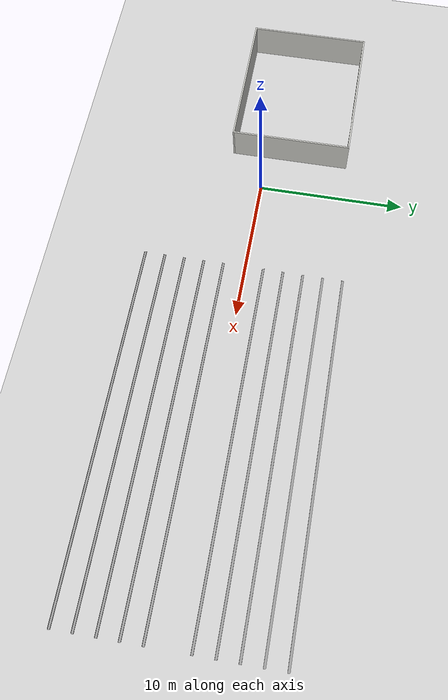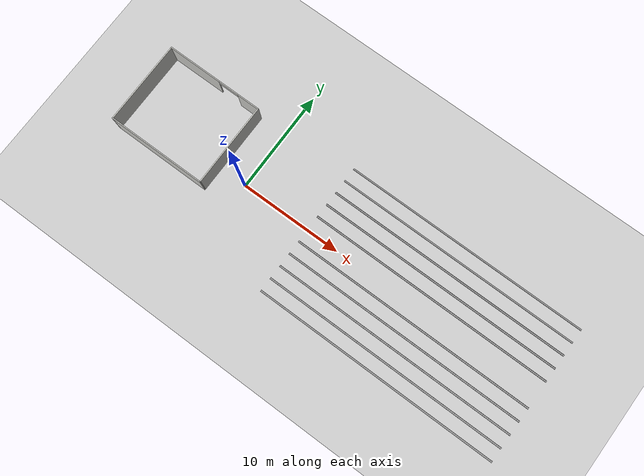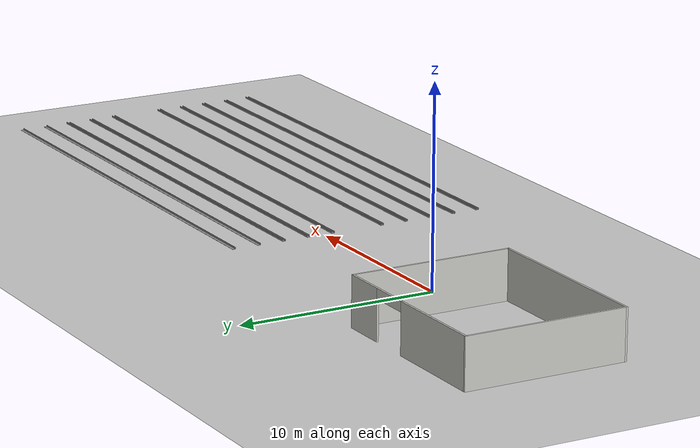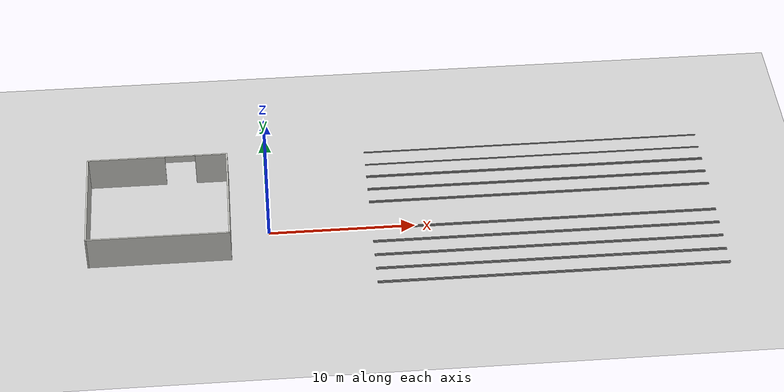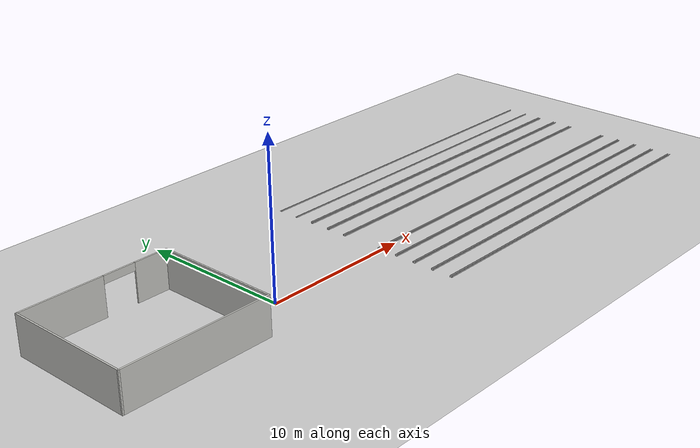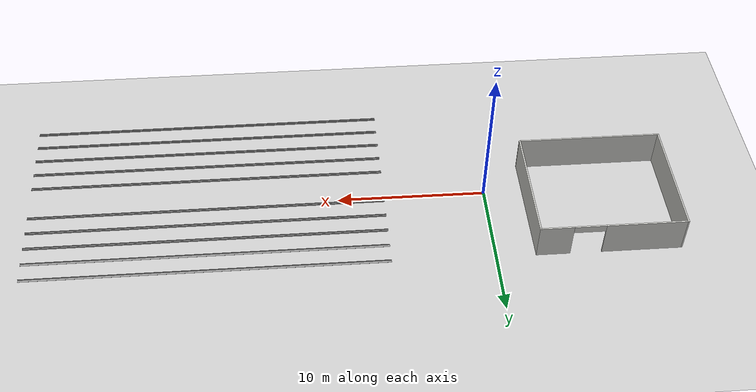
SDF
<sdf version="1.6">
 <world name="default">
  <model name="tray_0">
   <static>1</static>
   <link name="link_0">
    <collision name="collision"><geometry><box><size>23.62 0.15 0.005</size></box></geometry></collision>
    <visual name="visual">
     <geometry><box><size>23.62 0.15 0.005</size></box></geometry>
     <material>
      <script><uri>file://media/materials/scripts/gazebo.material</uri><name>Gazebo/Grey</name></script>
      <emissive>0 0 0 1</emissive>
      <shader type="vertex"><normal_map>__default__</normal_map></shader>
      <specular>0.01 0.01 0.01 1</specular>
      <lighting>1</lighting>
      <ambient>0.7 0.7 0.7 1</ambient>
      <diffuse>0.3 0.3 0.3 1</diffuse>
     </material>
    </visual>
    <pose>18.76 -6.64 1.14965 0 -0 0</pose>
   </link>
  </model>
  <model name="tray_1">
   <static>1</static>
   <link name="link_0">
    <collision name="collision"><geometry><box><size>23.62 0.15 0.005</size></box></geometry></collision>
    <visual name="visual">
     <geometry><box><size>23.62 0.15 0.005</size></box></geometry>
     <material>
      <script><uri>file://media/materials/scripts/gazebo.material</uri><name>Gazebo/Grey</name></script>
      <emissive>0 0 0 1</emissive>
      <shader type="vertex"><normal_map>__default__</normal_map></shader>
      <specular>0.01 0.01 0.01 1</specular>
      <lighting>1</lighting>
      <ambient>0.7 0.7 0.7 1</ambient>
      <diffuse>0.3 0.3 0.3 1</diffuse>
     </material>
    </visual>
    <pose>18.76 -5.32 1.14965 0 -0 0</pose>
   </link>
  </model>
  <model name="tray_2">
   <static>1</static>
   <link name="link_0">
    <collision name="collision"><geometry><box><size>23.62 0.15 0.005</size></box></geometry></collision>
    <visual name="visual">
     <geometry><box><size>23.62 0.15 0.005</size></box></geometry>
     <material>
      <script><uri>file://media/materials/scripts/gazebo.material</uri><name>Gazebo/Grey</name></script>
      <emissive>0 0 0 1</emissive>
      <shader type="vertex"><normal_map>__default__</normal_map></shader>
      <specular>0.01 0.01 0.01 1</specular>
      <lighting>1</lighting>
      <ambient>0.7 0.7 0.7 1</ambient>
      <diffuse>0.3 0.3 0.3 1</diffuse>
     </material>
    </visual>
    <pose>18.76 -4 1.14965 0 -0 0</pose>
   </link>
  </model>
  <model name="tray_3">
   <static>1</static>
   <link name="link_0">
    <collision name="collision"><geometry><box><size>23.62 0.15 0.005</size></box></geometry></collision>
    <visual name="visual">
     <geometry><box><size>23.62 0.15 0.005</size></box></geometry>
     <material>
      <script><uri>file://media/materials/scripts/gazebo.material</uri><name>Gazebo/Grey</name></script>
      <emissive>0 0 0 1</emissive>
      <shader type="vertex"><normal_map>__default__</normal_map></shader>
      <specular>0.01 0.01 0.01 1</specular>
      <lighting>1</lighting>
      <ambient>0.7 0.7 0.7 1</ambient>
      <diffuse>0.3 0.3 0.3 1</diffuse>
     </material>
    </visual>
    <pose>18.76 -2.68 1.14965 0 -0 0</pose>
   </link>
  </model>
  <model name="tray_4">
   <static>1</static>
   <link name="link_0">
    <collision name="collision"><geometry><box><size>23.62 0.15 0.005</size></box></geometry></collision>
    <visual name="visual">
     <geometry><box><size>23.62 0.15 0.005</size></box></geometry>
     <material>
      <script><uri>file://media/materials/scripts/gazebo.material</uri><name>Gazebo/Grey</name></script>
      <emissive>0 0 0 1</emissive>
      <shader type="vertex"><normal_map>__default__</normal_map></shader>
      <specular>0.01 0.01 0.01 1</specular>
      <lighting>1</lighting>
      <ambient>0.7 0.7 0.7 1</ambient>
      <diffuse>0.3 0.3 0.3 1</diffuse>
     </material>
    </visual>
    <pose>18.76 -1.36 1.14965 0 -0 0</pose>
   </link>
  </model>
  <model name="tray_p2_0">
   <static>1</static>
   <link name="link_0">
    <collision name="collision"><geometry><box><size>23.62 0.085 0.005</size></box></geometry></collision>
    <visual name="visual">
     <geometry><box><size>23.62 0.085 0.005</size></box></geometry>
     <material>
      <script><uri>file://media/materials/scripts/gazebo.material</uri><name>Gazebo/Grey</name></script>
      <emissive>0 0 0 1</emissive>
      <shader type="vertex"><normal_map>__default__</normal_map></shader>
      <specular>0.01 0.01 0.01 1</specular>
      <lighting>1</lighting>
      <ambient>0.7 0.7 0.7 1</ambient>
      <diffuse>0.3 0.3 0.3 1</diffuse>
     </material>
    </visual>
    <pose>18.76 -6.715 1.19165 1.5707 -0 0</pose>
   </link>
  </model>
  <model name="tray_p2_1">
   <static>1</static>
   <link name="link_0">
    <collision name="collision"><geometry><box><size>23.62 0.085 0.005</size></box></geometry></collision>
    <visual name="visual">
     <geometry><box><size>23.62 0.085 0.005</size></box></geometry>
     <material>
      <script><uri>file://media/materials/scripts/gazebo.material</uri><name>Gazebo/Grey</name></script>
      <emissive>0 0 0 1</emissive>
      <shader type="vertex"><normal_map>__default__</normal_map></shader>
      <specular>0.01 0.01 0.01 1</specular>
      <lighting>1</lighting>
      <ambient>0.7 0.7 0.7 1</ambient>
      <diffuse>0.3 0.3 0.3 1</diffuse>
     </material>
    </visual>
    <pose>18.76 -5.395 1.19165 1.5707 -0 0</pose>
   </link>
  </model>
  <model name="tray_p2_2">
   <static>1</static>
   <link name="link_0">
    <collision name="collision"><geometry><box><size>23.62 0.085 0.005</size></box></geometry></collision>
    <visual name="visual">
     <geometry><box><size>23.62 0.085 0.005</size></box></geometry>
     <material>
      <script><uri>file://media/materials/scripts/gazebo.material</uri><name>Gazebo/Grey</name></script>
      <emissive>0 0 0 1</emissive>
      <shader type="vertex"><normal_map>__default__</normal_map></shader>
      <specular>0.01 0.01 0.01 1</specular>
      <lighting>1</lighting>
      <ambient>0.7 0.7 0.7 1</ambient>
      <diffuse>0.3 0.3 0.3 1</diffuse>
     </material>
    </visual>
    <pose>18.76 -4.075 1.19165 1.5707 -0 0</pose>
   </link>
  </model>
  <model name="tray_p2_3">
   <static>1</static>
   <link name="link_0">
    <collision name="collision"><geometry><box><size>23.62 0.085 0.005</size></box></geometry></collision>
    <visual name="visual">
     <geometry><box><size>23.62 0.085 0.005</size></box></geometry>
     <material>
      <script><uri>file://media/materials/scripts/gazebo.material</uri><name>Gazebo/Grey</name></script>
      <emissive>0 0 0 1</emissive>
      <shader type="vertex"><normal_map>__default__</normal_map></shader>
      <specular>0.01 0.01 0.01 1</specular>
      <lighting>1</lighting>
      <ambient>0.7 0.7 0.7 1</ambient>
      <diffuse>0.3 0.3 0.3 1</diffuse>
     </material>
    </visual>
    <pose>18.76 -2.755 1.19165 1.5707 -0 0</pose>
   </link>
  </model>
  <model name="tray_p2_4">
   <static>1</static>
   <link name="link_0">
    <collision name="collision"><geometry><box><size>23.62 0.085 0.005</size></box></geometry></collision>
    <visual name="visual">
     <geometry><box><size>23.62 0.085 0.005</size></box></geometry>
     <material>
      <script><uri>file://media/materials/scripts/gazebo.material</uri><name>Gazebo/Grey</name></script>
      <emissive>0 0 0 1</emissive>
      <shader type="vertex"><normal_map>__default__</normal_map></shader>
      <specular>0.01 0.01 0.01 1</specular>
      <lighting>1</lighting>
      <ambient>0.7 0.7 0.7 1</ambient>
      <diffuse>0.3 0.3 0.3 1</diffuse>
     </material>
    </visual>
    <pose>18.76 -1.435 1.19165 1.5707 -0 0</pose>
   </link>
  </model>
  <model name="tray_p2_5">
   <static>1</static>
   <link name="link_0">
    <collision name="collision"><geometry><box><size>23.62 0.085 0.005</size></box></geometry></collision>
    <visual name="visual">
     <geometry><box><size>23.62 0.085 0.005</size></box></geometry>
     <material>
      <script><uri>file://media/materials/scripts/gazebo.material</uri><name>Gazebo/Grey</name></script>
      <emissive>0 0 0 1</emissive>
      <shader type="vertex"><normal_map>__default__</normal_map></shader>
      <specular>0.01 0.01 0.01 1</specular>
      <lighting>1</lighting>
      <ambient>0.7 0.7 0.7 1</ambient>
      <diffuse>0.3 0.3 0.3 1</diffuse>
     </material>
    </visual>
    <pose>18.76 -6.565 1.19165 1.5707 -0 0</pose>
   </link>
  </model>
  <model name="tray_p2_6">
   <static>1</static>
   <link name="link_0">
    <collision name="collision"><geometry><box><size>23.62 0.085 0.005</size></box></geometry></collision>
    <visual name="visual">
     <geometry><box><size>23.62 0.085 0.005</size></box></geometry>
     <material>
      <script><uri>file://media/materials/scripts/gazebo.material</uri><name>Gazebo/Grey</name></script>
      <emissive>0 0 0 1</emissive>
      <shader type="vertex"><normal_map>__default__</normal_map></shader>
      <specular>0.01 0.01 0.01 1</specular>
      <lighting>1</lighting>
      <ambient>0.7 0.7 0.7 1</ambient>
      <diffuse>0.3 0.3 0.3 1</diffuse>
     </material>
    </visual>
    <pose>18.76 -5.245 1.19165 1.5707 -0 0</pose>
   </link>
  </model>
  <model name="tray_p2_7">
   <static>1</static>
   <link name="link_0">
    <collision name="collision"><geometry><box><size>23.62 0.085 0.005</size></box></geometry></collision>
    <visual name="visual">
     <geometry><box><size>23.62 0.085 0.005</size></box></geometry>
     <material>
      <script><uri>file://media/materials/scripts/gazebo.material</uri><name>Gazebo/Grey</name></script>
      <emissive>0 0 0 1</emissive>
      <shader type="vertex"><normal_map>__default__</normal_map></shader>
      <specular>0.01 0.01 0.01 1</specular>
      <lighting>1</lighting>
      <ambient>0.7 0.7 0.7 1</ambient>
      <diffuse>0.3 0.3 0.3 1</diffuse>
     </material>
    </visual>
    <pose>18.76 -3.925 1.19165 1.5707 -0 0</pose>
   </link>
  </model>
  <model name="tray_p2_8">
   <static>1</static>
   <link name="link_0">
    <collision name="collision"><geometry><box><size>23.62 0.085 0.005</size></box></geometry></collision>
    <visual name="visual">
     <geometry><box><size>23.62 0.085 0.005</size></box></geometry>
     <material>
      <script><uri>file://media/materials/scripts/gazebo.material</uri><name>Gazebo/Grey</name></script>
      <emissive>0 0 0 1</emissive>
      <shader type="vertex"><normal_map>__default__</normal_map></shader>
      <specular>0.01 0.01 0.01 1</specular>
      <lighting>1</lighting>
      <ambient>0.7 0.7 0.7 1</ambient>
      <diffuse>0.3 0.3 0.3 1</diffuse>
     </material>
    </visual>
    <pose>18.76 -2.605 1.19165 1.5707 -0 0</pose>
   </link>
  </model>
  <model name="tray_p2_9">
   <static>1</static>
   <link name="link_0">
    <collision name="collision"><geometry><box><size>23.62 0.085 0.005</size></box></geometry></collision>
    <visual name="visual">
     <geometry><box><size>23.62 0.085 0.005</size></box></geometry>
     <material>
      <script><uri>file://media/materials/scripts/gazebo.material</uri><name>Gazebo/Grey</name></script>
      <emissive>0 0 0 1</emissive>
      <shader type="vertex"><normal_map>__default__</normal_map></shader>
      <specular>0.01 0.01 0.01 1</specular>
      <lighting>1</lighting>
      <ambient>0.7 0.7 0.7 1</ambient>
      <diffuse>0.3 0.3 0.3 1</diffuse>
     </material>
    </visual>
    <pose>18.76 -1.285 1.19165 1.5707 -0 0</pose>
   </link>
  </model>
  <model name="tray_5">
   <static>1</static>
   <link name="link_0">
    <collision name="collision"><geometry><box><size>23.62 0.15 0.005</size></box></geometry></collision>
    <visual name="visual">
     <geometry><box><size>23.62 0.15 0.005</size></box></geometry>
     <material>
      <script><uri>file://media/materials/scripts/gazebo.material</uri><name>Gazebo/Grey</name></script>
      <emissive>0 0 0 1</emissive>
      <shader type="vertex"><normal_map>__default__</normal_map></shader>
      <specular>0.01 0.01 0.01 1</specular>
      <lighting>1</lighting>
      <ambient>0.7 0.7 0.7 1</ambient>
      <diffuse>0.3 0.3 0.3 1</diffuse>
     </material>
    </visual>
    <pose>18.76 1.32 1.14965 0 -0 0</pose>
   </link>
  </model>
  <model name="tray_6">
   <static>1</static>
   <link name="link_0">
    <collision name="collision"><geometry><box><size>23.62 0.15 0.005</size></box></geometry></collision>
    <visual name="visual">
     <geometry><box><size>23.62 0.15 0.005</size></box></geometry>
     <material>
      <script><uri>file://media/materials/scripts/gazebo.material</uri><name>Gazebo/Grey</name></script>
      <emissive>0 0 0 1</emissive>
      <shader type="vertex"><normal_map>__default__</normal_map></shader>
      <specular>0.01 0.01 0.01 1</specular>
      <lighting>1</lighting>
      <ambient>0.7 0.7 0.7 1</ambient>
      <diffuse>0.3 0.3 0.3 1</diffuse>
     </material>
    </visual>
    <pose>18.76 2.64 1.14965 0 -0 0</pose>
   </link>
  </model>
  <model name="tray_7">
   <static>1</static>
   <link name="link_0">
    <collision name="collision"><geometry><box><size>23.62 0.15 0.005</size></box></geometry></collision>
    <visual name="visual">
     <geometry><box><size>23.62 0.15 0.005</size></box></geometry>
     <material>
      <script><uri>file://media/materials/scripts/gazebo.material</uri><name>Gazebo/Grey</name></script>
      <emissive>0 0 0 1</emissive>
      <shader type="vertex"><normal_map>__default__</normal_map></shader>
      <specular>0.01 0.01 0.01 1</specular>
      <lighting>1</lighting>
      <ambient>0.7 0.7 0.7 1</ambient>
      <diffuse>0.3 0.3 0.3 1</diffuse>
     </material>
    </visual>
    <pose>18.76 3.96 1.14965 0 -0 0</pose>
   </link>
  </model>
  <model name="tray_8">
   <static>1</static>
   <link name="link_0">
    <collision name="collision"><geometry><box><size>23.62 0.15 0.005</size></box></geometry></collision>
    <visual name="visual">
     <geometry><box><size>23.62 0.15 0.005</size></box></geometry>
     <material>
      <script><uri>file://media/materials/scripts/gazebo.material</uri><name>Gazebo/Grey</name></script>
      <emissive>0 0 0 1</emissive>
      <shader type="vertex"><normal_map>__default__</normal_map></shader>
      <specular>0.01 0.01 0.01 1</specular>
      <lighting>1</lighting>
      <ambient>0.7 0.7 0.7 1</ambient>
      <diffuse>0.3 0.3 0.3 1</diffuse>
     </material>
    </visual>
    <pose>18.76 5.28 1.14965 0 -0 0</pose>
   </link>
  </model>
  <model name="tray_9">
   <static>1</static>
   <link name="link_0">
    <collision name="collision"><geometry><box><size>23.62 0.15 0.005</size></box></geometry></collision>
    <visual name="visual">
     <geometry><box><size>23.62 0.15 0.005</size></box></geometry>
     <material>
      <script><uri>file://media/materials/scripts/gazebo.material</uri><name>Gazebo/Grey</name></script>
      <emissive>0 0 0 1</emissive>
      <shader type="vertex"><normal_map>__default__</normal_map></shader>
      <specular>0.01 0.01 0.01 1</specular>
      <lighting>1</lighting>
      <ambient>0.7 0.7 0.7 1</ambient>
      <diffuse>0.3 0.3 0.3 1</diffuse>
     </material>
    </visual>
    <pose>18.76 6.6 1.14965 0 -0 0</pose>
   </link>
  </model>
  <model name="tray_p2_10">
   <static>1</static>
   <link name="link_0">
    <collision name="collision"><geometry><box><size>23.62 0.085 0.005</size></box></geometry></collision>
    <visual name="visual">
     <geometry><box><size>23.62 0.085 0.005</size></box></geometry>
     <material>
      <script><uri>file://media/materials/scripts/gazebo.material</uri><name>Gazebo/Grey</name></script>
      <emissive>0 0 0 1</emissive>
      <shader type="vertex"><normal_map>__default__</normal_map></shader>
      <specular>0.01 0.01 0.01 1</specular>
      <lighting>1</lighting>
      <ambient>0.7 0.7 0.7 1</ambient>
      <diffuse>0.3 0.3 0.3 1</diffuse>
     </material>
    </visual>
    <pose>18.76 1.245 1.19165 1.5707 -0 0</pose>
   </link>
  </model>
  <model name="tray_p2_11">
   <static>1</static>
   <link name="link_0">
    <collision name="collision"><geometry><box><size>23.62 0.085 0.005</size></box></geometry></collision>
    <visual name="visual">
     <geometry><box><size>23.62 0.085 0.005</size></box></geometry>
     <material>
      <script><uri>file://media/materials/scripts/gazebo.material</uri><name>Gazebo/Grey</name></script>
      <emissive>0 0 0 1</emissive>
      <shader type="vertex"><normal_map>__default__</normal_map></shader>
      <specular>0.01 0.01 0.01 1</specular>
      <lighting>1</lighting>
      <ambient>0.7 0.7 0.7 1</ambient>
      <diffuse>0.3 0.3 0.3 1</diffuse>
     </material>
    </visual>
    <pose>18.76 2.565 1.19165 1.5707 -0 0</pose>
   </link>
  </model>
  <model name="tray_p2_12">
   <static>1</static>
   <link name="link_0">
    <collision name="collision"><geometry><box><size>23.62 0.085 0.005</size></box></geometry></collision>
    <visual name="visual">
     <geometry><box><size>23.62 0.085 0.005</size></box></geometry>
     <material>
      <script><uri>file://media/materials/scripts/gazebo.material</uri><name>Gazebo/Grey</name></script>
      <emissive>0 0 0 1</emissive>
      <shader type="vertex"><normal_map>__default__</normal_map></shader>
      <specular>0.01 0.01 0.01 1</specular>
      <lighting>1</lighting>
      <ambient>0.7 0.7 0.7 1</ambient>
      <diffuse>0.3 0.3 0.3 1</diffuse>
     </material>
    </visual>
    <pose>18.76 3.885 1.19165 1.5707 -0 0</pose>
   </link>
  </model>
  <model name="tray_p2_13">
   <static>1</static>
   <link name="link_0">
    <collision name="collision"><geometry><box><size>23.62 0.085 0.005</size></box></geometry></collision>
    <visual name="visual">
     <geometry><box><size>23.62 0.085 0.005</size></box></geometry>
     <material>
      <script><uri>file://media/materials/scripts/gazebo.material</uri><name>Gazebo/Grey</name></script>
      <emissive>0 0 0 1</emissive>
      <shader type="vertex"><normal_map>__default__</normal_map></shader>
      <specular>0.01 0.01 0.01 1</specular>
      <lighting>1</lighting>
      <ambient>0.7 0.7 0.7 1</ambient>
      <diffuse>0.3 0.3 0.3 1</diffuse>
     </material>
    </visual>
    <pose>18.76 5.205 1.19165 1.5707 -0 0</pose>
   </link>
  </model>
  <model name="tray_p2_14">
   <static>1</static>
   <link name="link_0">
    <collision name="collision"><geometry><box><size>23.62 0.085 0.005</size></box></geometry></collision>
    <visual name="visual">
     <geometry><box><size>23.62 0.085 0.005</size></box></geometry>
     <material>
      <script><uri>file://media/materials/scripts/gazebo.material</uri><name>Gazebo/Grey</name></script>
      <emissive>0 0 0 1</emissive>
      <shader type="vertex"><normal_map>__default__</normal_map></shader>
      <specular>0.01 0.01 0.01 1</specular>
      <lighting>1</lighting>
      <ambient>0.7 0.7 0.7 1</ambient>
      <diffuse>0.3 0.3 0.3 1</diffuse>
     </material>
    </visual>
    <pose>18.76 6.525 1.19165 1.5707 -0 0</pose>
   </link>
  </model>
  <model name="tray_p2_15">
   <static>1</static>
   <link name="link_0">
    <collision name="collision"><geometry><box><size>23.62 0.085 0.005</size></box></geometry></collision>
    <visual name="visual">
     <geometry><box><size>23.62 0.085 0.005</size></box></geometry>
     <material>
      <script><uri>file://media/materials/scripts/gazebo.material</uri><name>Gazebo/Grey</name></script>
      <emissive>0 0 0 1</emissive>
      <shader type="vertex"><normal_map>__default__</normal_map></shader>
      <specular>0.01 0.01 0.01 1</specular>
      <lighting>1</lighting>
      <ambient>0.7 0.7 0.7 1</ambient>
      <diffuse>0.3 0.3 0.3 1</diffuse>
     </material>
    </visual>
    <pose>18.76 1.395 1.19165 1.5707 -0 0</pose>
   </link>
  </model>
  <model name="tray_p2_16">
   <static>1</static>
   <link name="link_0">
    <collision name="collision"><geometry><box><size>23.62 0.085 0.005</size></box></geometry></collision>
    <visual name="visual">
     <geometry><box><size>23.62 0.085 0.005</size></box></geometry>
     <material>
      <script><uri>file://media/materials/scripts/gazebo.material</uri><name>Gazebo/Grey</name></script>
      <emissive>0 0 0 1</emissive>
      <shader type="vertex"><normal_map>__default__</normal_map></shader>
      <specular>0.01 0.01 0.01 1</specular>
      <lighting>1</lighting>
      <ambient>0.7 0.7 0.7 1</ambient>
      <diffuse>0.3 0.3 0.3 1</diffuse>
     </material>
    </visual>
    <pose>18.76 2.715 1.19165 1.5707 -0 0</pose>
   </link>
  </model>
  <model name="tray_p2_17">
   <static>1</static>
   <link name="link_0">
    <collision name="collision"><geometry><box><size>23.62 0.085 0.005</size></box></geometry></collision>
    <visual name="visual">
     <geometry><box><size>23.62 0.085 0.005</size></box></geometry>
     <material>
      <script><uri>file://media/materials/scripts/gazebo.material</uri><name>Gazebo/Grey</name></script>
      <emissive>0 0 0 1</emissive>
      <shader type="vertex"><normal_map>__default__</normal_map></shader>
      <specular>0.01 0.01 0.01 1</specular>
      <lighting>1</lighting>
      <ambient>0.7 0.7 0.7 1</ambient>
      <diffuse>0.3 0.3 0.3 1</diffuse>
     </material>
    </visual>
    <pose>18.76 4.035 1.19165 1.5707 -0 0</pose>
   </link>
  </model>
  <model name="food_handling_shed_0">
   <static>1</static>
   <pose>-7.47 1.67 0 0 -0 3.141</pose>
   <link name="Wall_5">
    <collision name="Wall_5_Collision">
     <geometry><box><size>9.70037 0.1 2.5</size></box></geometry>
     <pose>0 0 1.25 0 -0 0</pose>
    </collision>
    <visual name="Wall_5_Visual">
     <geometry><box><size>9.70037 0.1 2.5</size></box></geometry>
     <meta><layer>0</layer></meta>
     <material>
      <script><uri>file://media/materials/scripts/gazebo.material</uri><name>Gazebo/CeilingTiled</name></script>
      <ambient>1 1 1 1</ambient>
     </material>
     <pose>0 0 1.25 0 -0 0</pose>
    </visual>
    <pose>-0 4.05 0 0 -0 0</pose>
   </link>
   <link name="Wall_6">
    <collision name="Wall_6_Collision">
     <geometry><box><size>8.20047 0.1 2.5</size></box></geometry>
     <pose>0 0 1.25 0 -0 0</pose>
    </collision>
    <visual name="Wall_6_Visual">
     <geometry><box><size>8.20047 0.1 2.5</size></box></geometry>
     <meta><layer>0</layer></meta>
     <material>
      <script><uri>file://media/materials/scripts/gazebo.material</uri><name>Gazebo/CeilingTiled</name></script>
      <ambient>1 1 1 1</ambient>
     </material>
     <pose>0 0 1.25 0 -0 0</pose>
    </visual>
    <pose>4.8 -0 0 0 -0 -1.5708</pose>
   </link>
   <link name="Wall_7">
    <collision name="Wall_7_Collision_0">
     <geometry><box><size>5.3757 0.1 2.5</size></box></geometry>
     <pose>-2.16197 0 1.25 0 -0 0</pose>
    </collision>
    <collision name="Wall_7_Collision_1">
     <geometry><box><size>2.23943 0.1 2.5</size></box></geometry>
     <pose>3.7301 0 1.25 0 -0 0</pose>
    </collision>
    <collision name="Wall_7_Collision_2">
     <geometry><box><size>2.0845 0.1 0.5</size></box></geometry>
     <pose>1.56813 0 2.25 0 -0 0</pose>
    </collision>
    <visual name="Wall_7_Visual_0">
     <geometry><box><size>5.3757 0.1 2.5</size></box></geometry>
     <meta><layer>0</layer></meta>
     <material>
      <script><uri>file://media/materials/scripts/gazebo.material</uri><name>Gazebo/CeilingTiled</name></script>
      <ambient>1 1 1 1</ambient>
     </material>
     <pose>-2.16197 0 1.25 0 -0 0</pose>
    </visual>
    <visual name="Wall_7_Visual_1">
     <geometry><box><size>2.23943 0.1 2.5</size></box></geometry>
     <meta><layer>0</layer></meta>
     <material>
      <script><uri>file://media/materials/scripts/gazebo.material</uri><name>Gazebo/CeilingTiled</name></script>
      <ambient>1 1 1 1</ambient>
     </material>
     <pose>3.7301 0 1.25 0 -0 0</pose>
    </visual>
    <visual name="Wall_7_Visual_2">
     <geometry><box><size>2.0845 0.1 0.5</size></box></geometry>
     <meta><layer>0</layer></meta>
     <material>
      <script><uri>file://media/materials/scripts/gazebo.material</uri><name>Gazebo/CeilingTiled</name></script>
      <ambient>1 1 1 1</ambient>
     </material>
     <pose>1.56813 0 2.25 0 -0 0</pose>
    </visual>
    <pose>-0 -4.05 0 0 -0 3.14159</pose>
   </link>
   <link name="Wall_8">
    <collision name="Wall_8_Collision">
     <geometry><box><size>8.19953 0.1 2.5</size></box></geometry>
     <pose>0 0 1.25 0 -0 0</pose>
    </collision>
    <visual name="Wall_8_Visual">
     <geometry><box><size>8.19953 0.1 2.5</size></box></geometry>
     <meta><layer>0</layer></meta>
     <material>
      <script><uri>file://media/materials/scripts/gazebo.material</uri><name>Gazebo/CeilingTiled</name></script>
      <ambient>1 1 1 1</ambient>
     </material>
     <pose>0 0 1.25 0 -0 0</pose>
    </visual>
    <pose>-4.8 -0 0 0 -0 1.5708</pose>
   </link>
  </model>
  <model name="ground_plane">
   <static>1</static>
   <link name="link">
    <collision name="collision">
     <geometry><plane><normal>0 0 1</normal><size>100 100</size></plane></geometry>
     <surface>
      <contact><collide_bitmask>65535</collide_bitmask></contact>
      <friction><ode><mu>100</mu><mu2>50</mu2></ode></friction>
     </surface>
    </collision>
    <visual name="visual">
     <cast_shadows>0</cast_shadows>
     <geometry><plane><normal>0 0 1</normal><size>100 100</size></plane></geometry>
     <material>
      <script><uri>file://media/materials/scripts/gazebo.material</uri><name>Gazebo/Grey</name></script>
     </material>
    </visual>
   </link>
  </model>
 </world>
</sdf>
